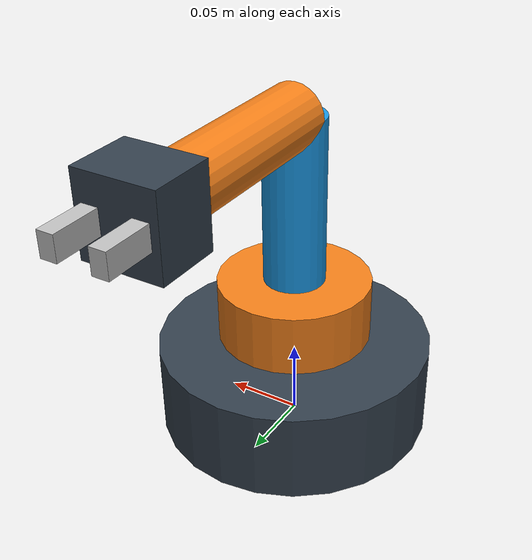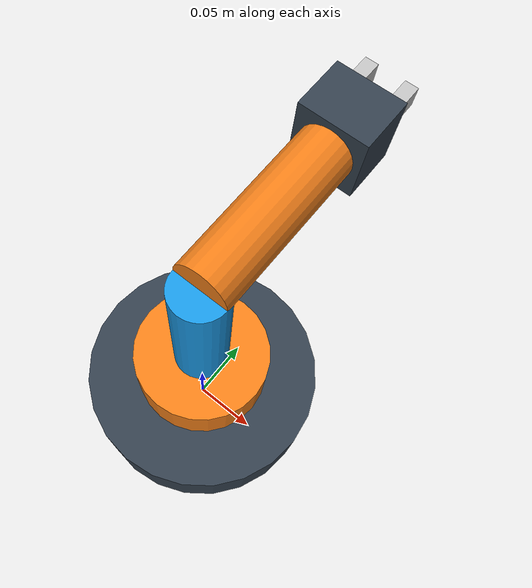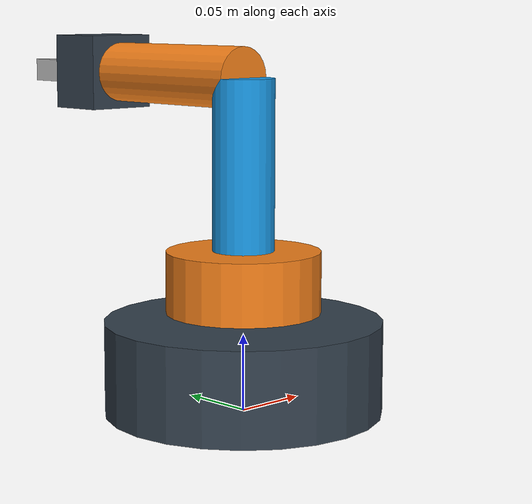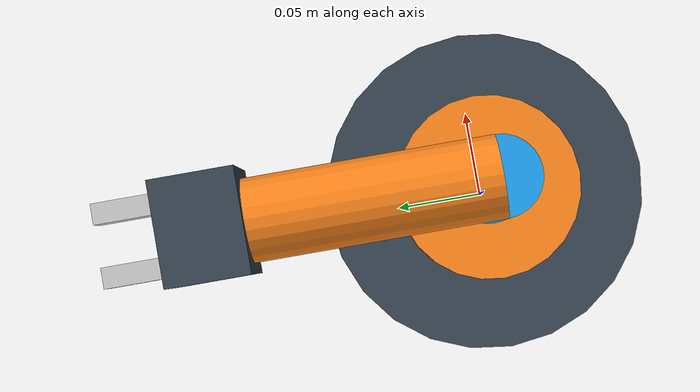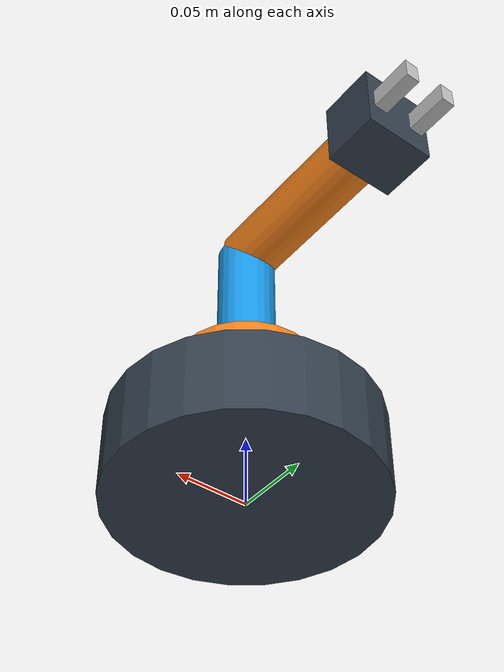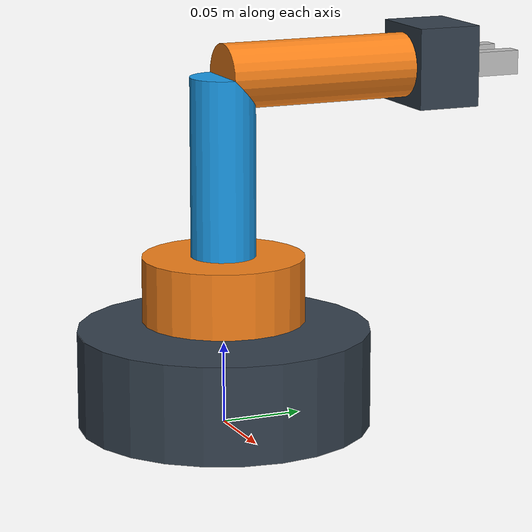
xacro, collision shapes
<?xml version="1.0"?>
<robot xmlns:xacro="http://www.ros.org/wiki/xacro" name="robot_arm">

  <!-- Propiedades geométricas (120 mm entre articulaciones principales) -->
  <xacro:property name="shank_length" value="0.120" />
  <xacro:property name="base_height" value="0.065" />
  <xacro:property name="mesh_scale" value="0.001 0.001 0.001" />

  <!-- Materiales visuales para RViz -->
  <material name="metallic_dark">
    <color rgba="0.2 0.25 0.3 1.0"/>
  </material>
  <material name="industrial_orange">
    <color rgba="0.95 0.5 0.1 1.0"/>
  </material>
  <material name="accent_blue">
    <color rgba="0.1 0.6 0.9 1.0"/>
  </material>
  <material name="gripper_silver">
    <color rgba="0.75 0.75 0.75 1.0"/>
  </material>

  <!-- Eslabón de Referencia Universal (World) -->
  <link name="world"/>

  <joint name="world_to_base" type="fixed">
    <parent link="world"/>
    <child link="base_link"/>
    <origin xyz="0 0 0" rpy="0 0 0"/>
  </joint>

  <!-- 1. BASE ESTÁTICA -->
  <link name="base_link">
    <visual>
      <origin xyz="0 0 0" rpy="0 0 0"/>
      <geometry>
        <mesh filename="package://robot_arm_description/meshes/base.stl" scale="${mesh_scale}"/>
      </geometry>
      <material name="metallic_dark"/>
    </visual>
    <collision>
      <origin xyz="0 0 0.03" rpy="0 0 0"/>
      <geometry>
        <cylinder radius="0.09" length="0.06"/>
      </geometry>
    </collision>
    <inertial>
      <mass value="0.6"/>
      <origin xyz="0 0 0.03"/>
      <inertia ixx="0.001" ixy="0" ixz="0" iyy="0.001" iyz="0" izz="0.001"/>
    </inertial>
  </link>

  <!-- ARTICULACIÓN 1: Rotación de la Base (Eje Z) -->
  <joint name="joint_base_rotate" type="revolute">
    <parent link="base_link"/>
    <child link="socket_link"/>
    <origin xyz="0 0 ${base_height}" rpy="0 0 0"/>
    <axis xyz="0 0 1"/>
    <limit lower="-1.5708" upper="1.5708" effort="10.0" velocity="1.5"/>
  </joint>

  <!-- 2. SOPORTE GIRATORIO (SOCKET) -->
  <link name="socket_link">
    <visual>
      <origin xyz="0 0 0" rpy="0 0 0"/>
      <geometry>
        <mesh filename="package://robot_arm_description/meshes/socket.stl" scale="${mesh_scale}"/>
      </geometry>
      <material name="industrial_orange"/>
    </visual>
    <collision>
      <origin xyz="0 0 0.02" rpy="0 0 0"/>
      <geometry>
        <cylinder radius="0.05" length="0.04"/>
      </geometry>
    </collision>
    <inertial>
      <mass value="0.3"/>
      <origin xyz="0 0 0.02"/>
      <inertia ixx="0.0005" ixy="0" ixz="0" iyy="0.0005" iyz="0" izz="0.0005"/>
    </inertial>
  </link>

  <!-- ARTICULACIÓN 2: Hombro / Brazo Inferior (Eje X) -->
  <joint name="joint_lower_arm" type="revolute">
    <parent link="socket_link"/>
    <child link="lower_arm_link"/>
    <origin xyz="0 0 0.03" rpy="0 0 0"/>
    <axis xyz="1 0 0"/>
    <limit lower="-0.5236" upper="1.5708" effort="15.0" velocity="1.5"/>
  </joint>

  <!-- 3. BRAZO INFERIOR (LOWER SHANK: 120 mm) -->
  <link name="lower_arm_link">
    <visual>
      <origin xyz="0 0 0" rpy="0 0 0"/>
      <geometry>
        <mesh filename="package://robot_arm_description/meshes/lowerShank.stl" scale="${mesh_scale}"/>
      </geometry>
      <material name="accent_blue"/>
    </visual>
    <collision>
      <origin xyz="0 0 ${shank_length / 2}" rpy="0 0 0"/>
      <geometry>
        <cylinder radius="0.02" length="${shank_length}"/>
      </geometry>
    </collision>
    <inertial>
      <mass value="0.25"/>
      <origin xyz="0 0 ${shank_length / 2}"/>
      <inertia ixx="0.0004" ixy="0" ixz="0" iyy="0.0004" iyz="0" izz="0.0001"/>
    </inertial>
  </link>

  <!-- ARTICULACIÓN 3: Codo / Brazo Superior (Eje X) -->
  <joint name="joint_upper_arm" type="revolute">
    <parent link="lower_arm_link"/>
    <child link="upper_arm_link"/>
    <origin xyz="0 0 ${shank_length}" rpy="0 0 0"/>
    <axis xyz="1 0 0"/>
    <limit lower="-1.9198" upper="0.7854" effort="15.0" velocity="1.5"/>
  </joint>

  <!-- 4. BRAZO SUPERIOR (UPPER SHANK: 120 mm) -->
  <link name="upper_arm_link">
    <visual>
      <origin xyz="0 0 0" rpy="0 0 0"/>
      <geometry>
        <mesh filename="package://robot_arm_description/meshes/upperShank.stl" scale="${mesh_scale}"/>
      </geometry>
      <material name="industrial_orange"/>
    </visual>
    <collision>
      <origin xyz="0 ${shank_length / 2} 0" rpy="1.5708 0 0"/>
      <geometry>
        <cylinder radius="0.02" length="${shank_length}"/>
      </geometry>
    </collision>
    <inertial>
      <mass value="0.2"/>
      <origin xyz="0 ${shank_length / 2} 0"/>
      <inertia ixx="0.0003" ixy="0" ixz="0" iyy="0.0003" iyz="0" izz="0.0001"/>
    </inertial>
  </link>

  <!-- ARTICULACIÓN 4: Muñeca / Rotación del Efector (Eje Y) -->
  <joint name="joint_wrist_rotate" type="revolute">
    <parent link="upper_arm_link"/>
    <child link="wrist_link"/>
    <origin xyz="0 ${shank_length} 0" rpy="0 0 0"/>
    <axis xyz="0 1 0"/>
    <limit lower="-3.1415" upper="3.1415" effort="5.0" velocity="2.0"/>
  </joint>

  <!-- 5. MUÑECA Y BASE DEL GRIPPER -->
  <link name="wrist_link">
    <visual>
      <origin xyz="0 0 0" rpy="0 0 0"/>
      <geometry>
        <mesh filename="package://robot_arm_description/meshes/gripperBase.stl" scale="${mesh_scale}"/>
      </geometry>
      <material name="metallic_dark"/>
    </visual>
    <collision>
      <origin xyz="0 0.02 0" rpy="0 0 0"/>
      <geometry>
        <box size="0.05 0.04 0.05"/>
      </geometry>
    </collision>
    <inertial>
      <mass value="0.15"/>
      <origin xyz="0 0.02 0"/>
      <inertia ixx="0.0001" ixy="0" ixz="0" iyy="0.0001" iyz="0" izz="0.0001"/>
    </inertial>
  </link>

  <!-- ARTICULACIÓN 5: Pinza Izquierda (Prismática) -->
  <joint name="joint_gripper_left" type="prismatic">
    <parent link="wrist_link"/>
    <child link="gripper_left_finger"/>
    <origin xyz="-0.015 0.04 0" rpy="0 0 0"/>
    <axis xyz="1 0 0"/>
    <limit lower="0.0" upper="0.025" effort="5.0" velocity="0.1"/>
  </joint>

  <link name="gripper_left_finger">
    <visual>
      <origin xyz="0 0 0" rpy="0 0 0"/>
      <geometry>
        <mesh filename="package://robot_arm_description/meshes/gripperFinger.stl" scale="${mesh_scale}"/>
      </geometry>
      <material name="gripper_silver"/>
    </visual>
    <collision>
      <origin xyz="0 0.015 0" rpy="0 0 0"/>
      <geometry>
        <box size="0.01 0.03 0.015"/>
      </geometry>
    </collision>
  </link>

  <!-- ARTICULACIÓN 6: Pinza Derecha (Mimic / Reflejo simétrico) -->
  <joint name="joint_gripper_right" type="prismatic">
    <parent link="wrist_link"/>
    <child link="gripper_right_finger"/>
    <origin xyz="0.015 0.04 0" rpy="0 0 0"/>
    <axis xyz="-1 0 0"/>
    <limit lower="0.0" upper="0.025" effort="5.0" velocity="0.1"/>
    <mimic joint="joint_gripper_left" multiplier="1.0" offset="0.0"/>
  </joint>

  <link name="gripper_right_finger">
    <visual>
      <origin xyz="0 0 0" rpy="0 0 3.14159"/>
      <geometry>
        <mesh filename="package://robot_arm_description/meshes/gripperFinger.stl" scale="${mesh_scale}"/>
      </geometry>
      <material name="gripper_silver"/>
    </visual>
    <collision>
      <origin xyz="0 0.015 0" rpy="0 0 0"/>
      <geometry>
        <box size="0.01 0.03 0.015"/>
      </geometry>
    </collision>
  </link>

  <!-- PUNTO EFECTOR FINAL (TCP - Tool Center Point) -->
  <link name="tcp_link"/>
  <joint name="wrist_to_tcp" type="fixed">
    <parent link="wrist_link"/>
    <child link="tcp_link"/>
    <origin xyz="0 0.065 0" rpy="0 0 0"/>
  </joint>

</robot>
